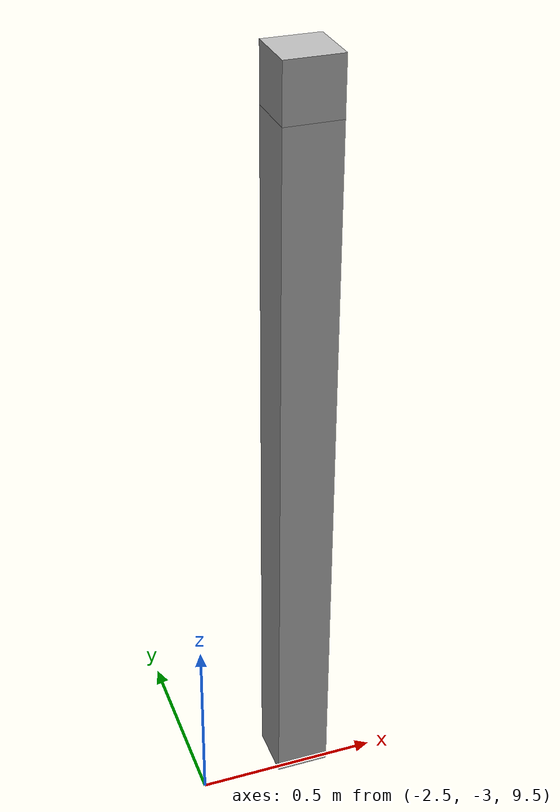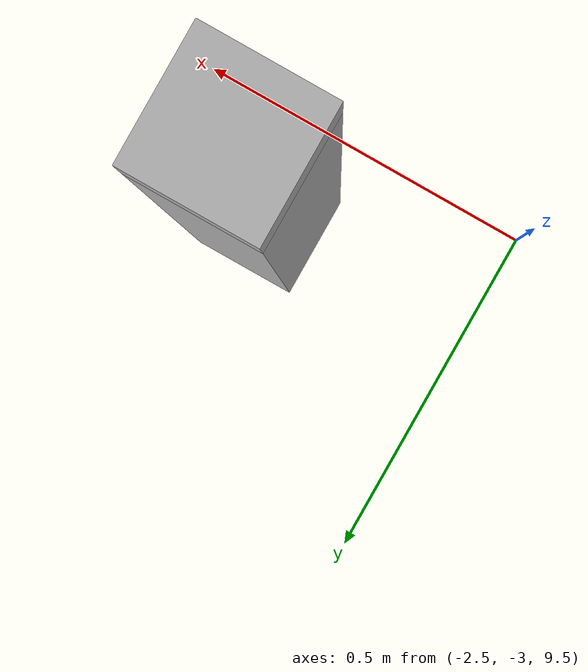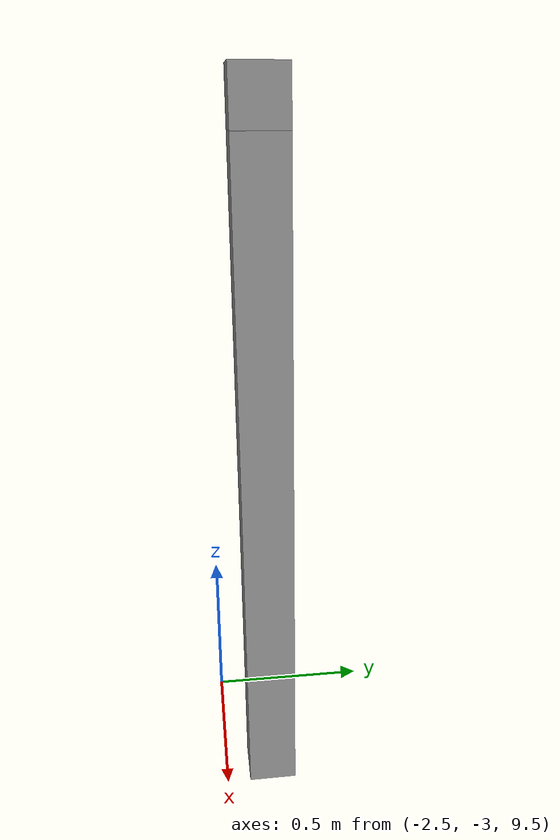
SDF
<sdf version="1.7">
 <world name="default">
  <model name="orthogonal_747_2.000.15_TS">
   <static>1</static>
   <link name="u_link_6_1_2">
    <inertial>
     <mass>1</mass>
     <inertia>
      <ixx>0.166667</ixx>
      <ixy>0</ixy>
      <ixz>0</ixz>
      <iyy>0.166667</iyy>
      <iyz>0</iyz>
      <izz>0.166667</izz>
     </inertia>
    </inertial>
    <pose>4.3 2.15 13.975 0 -0 0</pose>
    <visual name="visual_0">
     <laser_retro>5552</laser_retro>
     <geometry><box><size>0.15 1e-06 0.15</size></box></geometry>
     <material>
      <script><name>Gazebo/Grey</name><uri>file://media/materials/scripts/gazebo.material</uri></script>
      <shader type="pixel"><normal_map>__default__</normal_map></shader>
      <ambient>0.678 0.498 0.659 1</ambient>
      <diffuse>0.7 0.7 0.7 1</diffuse>
      <specular>0.01 0.01 0.01 1</specular>
      <emissive>0 0 0 1</emissive>
     </material>
     <pose>0 -0.075 0 0 -0 0</pose>
     <transparency>1</transparency>
    </visual>
    <visual name="visual_1">
     <laser_retro>5553</laser_retro>
     <geometry><box><size>0.15 1e-06 0.15</size></box></geometry>
     <material>
      <script><name>Gazebo/Grey</name><uri>file://media/materials/scripts/gazebo.material</uri></script>
      <shader type="pixel"><normal_map>__default__</normal_map></shader>
      <ambient>0.447 0.624 0.812 1</ambient>
      <diffuse>0.7 0.7 0.7 1</diffuse>
      <specular>0.01 0.01 0.01 1</specular>
      <emissive>0 0 0 1</emissive>
     </material>
     <pose>0 0.075 0 0 -0 0</pose>
     <transparency>1</transparency>
    </visual>
    <visual name="visual_2">
     <laser_retro>5554</laser_retro>
     <geometry><box><size>0.15 0.15 1e-06</size></box></geometry>
     <material>
      <script><name>Gazebo/Grey</name><uri>file://media/materials/scripts/gazebo.material</uri></script>
      <shader type="pixel"><normal_map>__default__</normal_map></shader>
      <ambient>0.988 0.686 0.243 1</ambient>
      <diffuse>0.7 0.7 0.7 1</diffuse>
      <specular>0.01 0.01 0.01 1</specular>
      <emissive>0 0 0 1</emissive>
     </material>
     <pose>0 0 -0.075 0 -0 0</pose>
     <transparency>1</transparency>
    </visual>
    <visual name="visual_3">
     <laser_retro>5555</laser_retro>
     <geometry><box><size>1e-06 0.15 0.15</size></box></geometry>
     <material>
      <script><name>Gazebo/Grey</name><uri>file://media/materials/scripts/gazebo.material</uri></script>
      <shader type="pixel"><normal_map>__default__</normal_map></shader>
      <ambient>0.988 0.914 0.31 1</ambient>
      <diffuse>0.7 0.7 0.7 1</diffuse>
      <specular>0.01 0.01 0.01 1</specular>
      <emissive>0 0 0 1</emissive>
     </material>
     <pose>0.075 0 0 0 -0 0</pose>
     <transparency>1</transparency>
    </visual>
    <visual name="visual_4">
     <laser_retro>5556</laser_retro>
     <geometry><box><size>0.15 0.15 1e-06</size></box></geometry>
     <material>
      <script><name>Gazebo/Grey</name><uri>file://media/materials/scripts/gazebo.material</uri></script>
      <shader type="pixel"><normal_map>__default__</normal_map></shader>
      <ambient>0.937 0.161 0.161 1</ambient>
      <diffuse>0.7 0.7 0.7 1</diffuse>
      <specular>0.01 0.01 0.01 1</specular>
      <emissive>0 0 0 1</emissive>
     </material>
     <pose>0 0 0.075 0 -0 0</pose>
     <transparency>1</transparency>
    </visual>
    <visual name="visual_5">
     <laser_retro>5557</laser_retro>
     <geometry><box><size>1e-06 0.15 0.15</size></box></geometry>
     <material>
      <script><name>Gazebo/Grey</name><uri>file://media/materials/scripts/gazebo.material</uri></script>
      <shader type="pixel"><normal_map>__default__</normal_map></shader>
      <ambient>0.541 0.886 0.204 1</ambient>
      <diffuse>0.7 0.7 0.7 1</diffuse>
      <specular>0.01 0.01 0.01 1</specular>
      <emissive>0 0 0 1</emissive>
     </material>
     <pose>-0.075 0 0 0 -0 0</pose>
     <transparency>1</transparency>
    </visual>
    <visual name="visual_texture">
     <geometry><box><size>0.149985 0.149985 0.149985</size></box></geometry>
     <material>
      <script>
       <uri>model://BASE_MODELS/simple_block_v2_textured/materials/scripts</uri>
       <uri>model://BASE_MODELS/simple_block_v2_textured/materials/textures</uri>
       <name>metal</name>
      </script>
     </material>
     <laser_retro>5558</laser_retro>
    </visual>
    <collision name="collision">
     <geometry><box><size>0.15 0.15 0.15</size></box></geometry>
     <surface>
      <friction>
       <ode><mu>1</mu><mu2>1</mu2><fdir1>0 0 0</fdir1><slip1>0</slip1><slip2>0</slip2></ode>
       <torsional>
        <coefficient>1</coefficient>
        <patch_radius>0</patch_radius>
        <surface_radius>0</surface_radius>
        <use_patch_radius>1</use_patch_radius>
        <ode><slip>0</slip></ode>
       </torsional>
      </friction>
      <bounce><restitution_coefficient>0</restitution_coefficient><threshold>1e+06</threshold></bounce>
      <contact>
       <collide_without_contact>0</collide_without_contact>
       <collide_without_contact_bitmask>1</collide_without_contact_bitmask>
       <collide_bitmask>1</collide_bitmask>
       <ode>
        <soft_cfm>0</soft_cfm>
        <soft_erp>0.2</soft_erp>
        <kp>1e+13</kp>
        <kd>1</kd>
        <max_vel>0.01</max_vel>
        <min_depth>0</min_depth>
       </ode>
       <bullet>
        <split_impulse>1</split_impulse>
        <split_impulse_penetration_threshold>-0.01</split_impulse_penetration_threshold>
        <soft_cfm>0</soft_cfm>
        <soft_erp>0.2</soft_erp>
        <kp>1e+13</kp>
        <kd>1</kd>
       </bullet>
      </contact>
     </surface>
    </collision>
   </link>
   <link name="z_link_6_1_2">
    <inertial>
     <mass>1</mass>
     <inertia>
      <ixx>0.166667</ixx>
      <ixy>0</ixy>
      <ixz>0</ixz>
      <iyy>0.166667</iyy>
      <iyz>0</iyz>
      <izz>0.166667</izz>
     </inertia>
    </inertial>
    <pose>4.3 2.15 12.9 0 -0 0</pose>
    <visual name="visual_0">
     <laser_retro>5559</laser_retro>
     <geometry><box><size>0.15 1e-06 2</size></box></geometry>
     <material>
      <script><name>Gazebo/Grey</name><uri>file://media/materials/scripts/gazebo.material</uri></script>
      <shader type="pixel"><normal_map>__default__</normal_map></shader>
      <ambient>0.678 0.498 0.659 1</ambient>
      <diffuse>0.7 0.7 0.7 1</diffuse>
      <specular>0.01 0.01 0.01 1</specular>
      <emissive>0 0 0 1</emissive>
     </material>
     <pose>0 -0.075 0 0 -0 0</pose>
     <transparency>1</transparency>
    </visual>
    <visual name="visual_1">
     <laser_retro>5560</laser_retro>
     <geometry><box><size>0.15 1e-06 2</size></box></geometry>
     <material>
      <script><name>Gazebo/Grey</name><uri>file://media/materials/scripts/gazebo.material</uri></script>
      <shader type="pixel"><normal_map>__default__</normal_map></shader>
      <ambient>0.447 0.624 0.812 1</ambient>
      <diffuse>0.7 0.7 0.7 1</diffuse>
      <specular>0.01 0.01 0.01 1</specular>
      <emissive>0 0 0 1</emissive>
     </material>
     <pose>0 0.075 0 0 -0 0</pose>
     <transparency>1</transparency>
    </visual>
    <visual name="visual_2">
     <laser_retro>5561</laser_retro>
     <geometry><box><size>0.15 0.15 1e-06</size></box></geometry>
     <material>
      <script><name>Gazebo/Grey</name><uri>file://media/materials/scripts/gazebo.material</uri></script>
      <shader type="pixel"><normal_map>__default__</normal_map></shader>
      <ambient>0.988 0.686 0.243 1</ambient>
      <diffuse>0.7 0.7 0.7 1</diffuse>
      <specular>0.01 0.01 0.01 1</specular>
      <emissive>0 0 0 1</emissive>
     </material>
     <pose>0 0 -1 0 -0 0</pose>
     <transparency>1</transparency>
    </visual>
    <visual name="visual_3">
     <laser_retro>5562</laser_retro>
     <geometry><box><size>1e-06 0.15 2</size></box></geometry>
     <material>
      <script><name>Gazebo/Grey</name><uri>file://media/materials/scripts/gazebo.material</uri></script>
      <shader type="pixel"><normal_map>__default__</normal_map></shader>
      <ambient>0.988 0.914 0.31 1</ambient>
      <diffuse>0.7 0.7 0.7 1</diffuse>
      <specular>0.01 0.01 0.01 1</specular>
      <emissive>0 0 0 1</emissive>
     </material>
     <pose>0.075 0 0 0 -0 0</pose>
     <transparency>1</transparency>
    </visual>
    <visual name="visual_4">
     <laser_retro>5563</laser_retro>
     <geometry><box><size>0.15 0.15 1e-06</size></box></geometry>
     <material>
      <script><name>Gazebo/Grey</name><uri>file://media/materials/scripts/gazebo.material</uri></script>
      <shader type="pixel"><normal_map>__default__</normal_map></shader>
      <ambient>0.937 0.161 0.161 1</ambient>
      <diffuse>0.7 0.7 0.7 1</diffuse>
      <specular>0.01 0.01 0.01 1</specular>
      <emissive>0 0 0 1</emissive>
     </material>
     <pose>0 0 1 0 -0 0</pose>
     <transparency>1</transparency>
    </visual>
    <visual name="visual_5">
     <laser_retro>5564</laser_retro>
     <geometry><box><size>1e-06 0.15 2</size></box></geometry>
     <material>
      <script><name>Gazebo/Grey</name><uri>file://media/materials/scripts/gazebo.material</uri></script>
      <shader type="pixel"><normal_map>__default__</normal_map></shader>
      <ambient>0.541 0.886 0.204 1</ambient>
      <diffuse>0.7 0.7 0.7 1</diffuse>
      <specular>0.01 0.01 0.01 1</specular>
      <emissive>0 0 0 1</emissive>
     </material>
     <pose>-0.075 0 0 0 -0 0</pose>
     <transparency>1</transparency>
    </visual>
    <visual name="visual_texture">
     <geometry><box><size>0.149985 0.149985 1.9998</size></box></geometry>
     <material>
      <script>
       <uri>model://BASE_MODELS/simple_block_v2_textured/materials/scripts</uri>
       <uri>model://BASE_MODELS/simple_block_v2_textured/materials/textures</uri>
       <name>metal</name>
      </script>
     </material>
     <laser_retro>5565</laser_retro>
    </visual>
    <collision name="collision">
     <geometry><box><size>0.15 0.15 2</size></box></geometry>
     <surface>
      <friction>
       <ode><mu>1</mu><mu2>1</mu2><fdir1>0 0 0</fdir1><slip1>0</slip1><slip2>0</slip2></ode>
       <torsional>
        <coefficient>1</coefficient>
        <patch_radius>0</patch_radius>
        <surface_radius>0</surface_radius>
        <use_patch_radius>1</use_patch_radius>
        <ode><slip>0</slip></ode>
       </torsional>
      </friction>
      <bounce><restitution_coefficient>0</restitution_coefficient><threshold>1e+06</threshold></bounce>
      <contact>
       <collide_without_contact>0</collide_without_contact>
       <collide_without_contact_bitmask>1</collide_without_contact_bitmask>
       <collide_bitmask>1</collide_bitmask>
       <ode>
        <soft_cfm>0</soft_cfm>
        <soft_erp>0.2</soft_erp>
        <kp>1e+13</kp>
        <kd>1</kd>
        <max_vel>0.01</max_vel>
        <min_depth>0</min_depth>
       </ode>
       <bullet>
        <split_impulse>1</split_impulse>
        <split_impulse_penetration_threshold>-0.01</split_impulse_penetration_threshold>
        <soft_cfm>0</soft_cfm>
        <soft_erp>0.2</soft_erp>
        <kp>1e+13</kp>
        <kd>1</kd>
       </bullet>
      </contact>
     </surface>
    </collision>
   </link>
   <pose>-6.47624 -5 -2.5 0 -0 0</pose>
  </model>
 </world>
</sdf>
